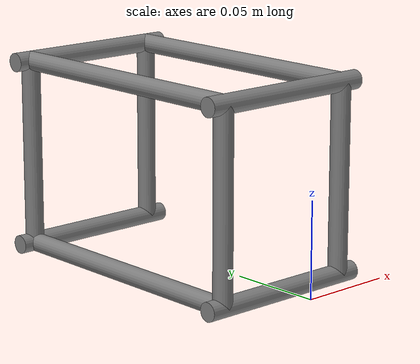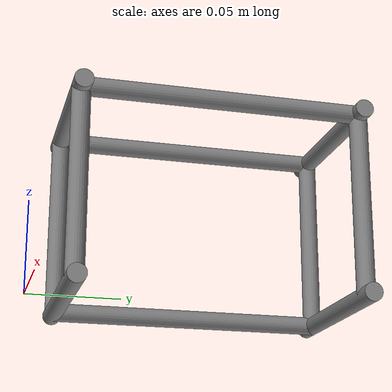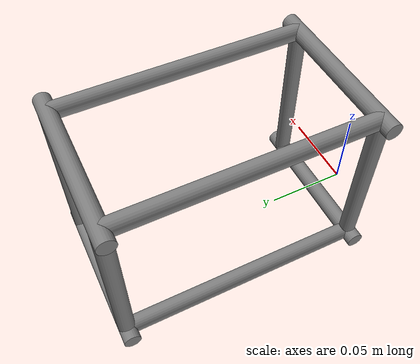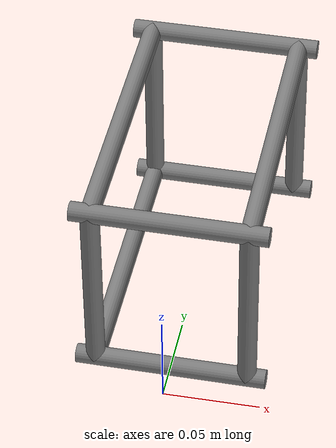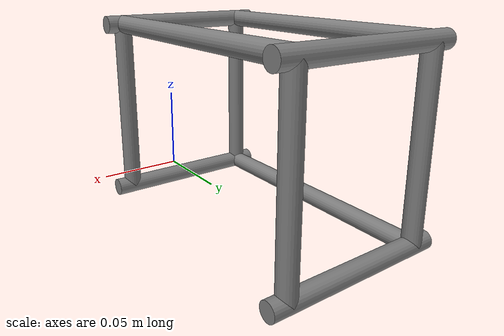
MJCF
<mujoco>
  <compiler meshdir="assets/meshes" texturedir="assets/textures" autolimits="true"/>

  <asset>

  </asset>

  <default>

        <!-- GoalPost -->
        <default class="goalPost">
          <geom   type="cylinder"   />
        </default>

  </default>

  <worldbody>

            <geom class="goalPost" pos="0.04 0.02 0.05"
                  size="0.005 0.05" euler="0 0 0"/>

            <geom class="goalPost" pos="-0.04 0.02 0.05"
                  size="0.005 0.05" euler="0 0 0"/>

            <geom class="goalPost" pos="0 0.02 0"
                  size="0.005 0.05" euler="0 90 0"/>

            <geom class="goalPost" pos="0 0.02 0.1"
                  size="0.005 0.05" euler="0 90 0"/>

            <geom class="goalPost" pos="0.04 0.16999999999999998 0.05"
                  size="0.005 0.05" euler="0 0 0"/>

            <geom class="goalPost" pos="-0.04 0.16999999999999998 0.05"
                  size="0.005 0.05" euler="0 0 0"/>

            <geom class="goalPost" pos="0 0.16999999999999998 0"
                  size="0.005 0.05" euler="0 90 0"/>

            <geom class="goalPost" pos="0 0.16999999999999998 0.1"
                  size="0.005 0.05" euler="0 90 0"/>

          <geom class="goalPost" pos="0.04 0.095 0.1"
                size="0.005 0.075" euler="90 0 0"/>

          <geom class="goalPost" pos="-0.04 0.095 0"
                size="0.005 0.075" euler="90 0 0"/>

          <geom class="goalPost" pos="-0.04 0.095 0.1"
                size="0.005 0.075" euler="90 0 0"/>

  </worldbody>

</mujoco>
